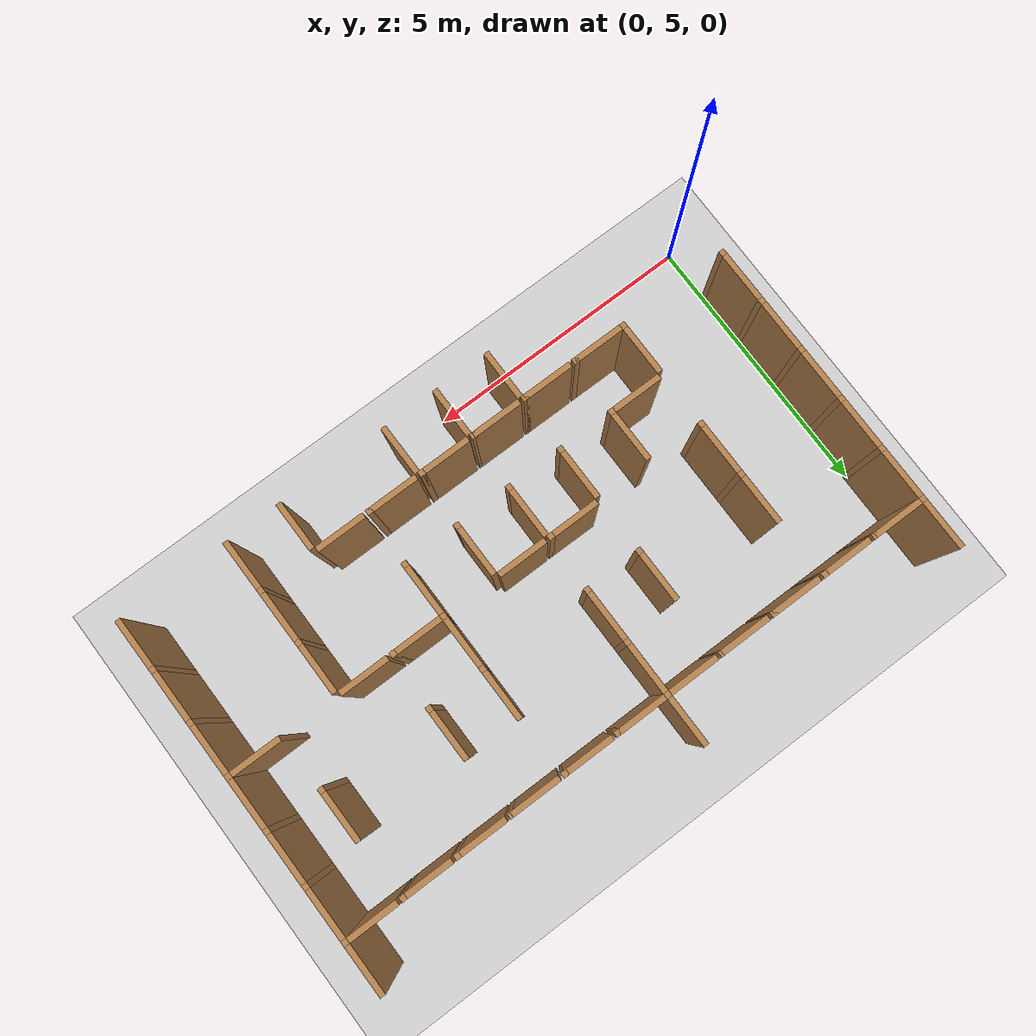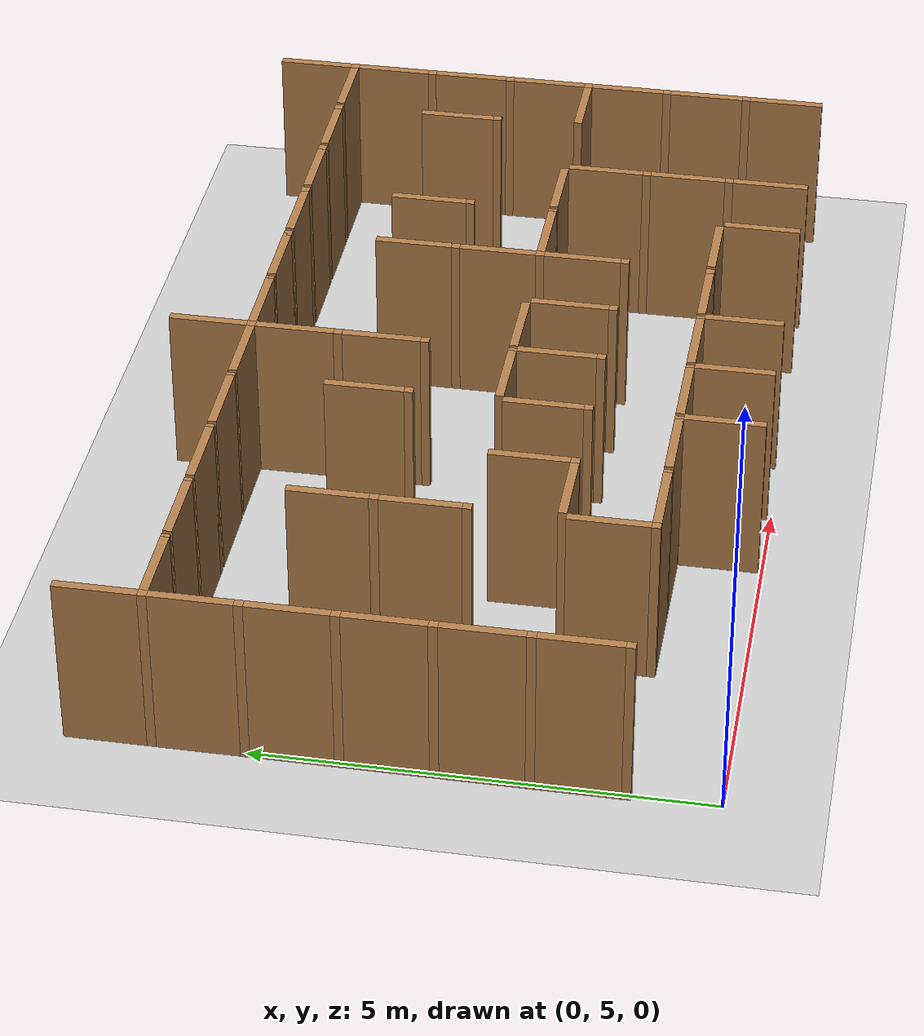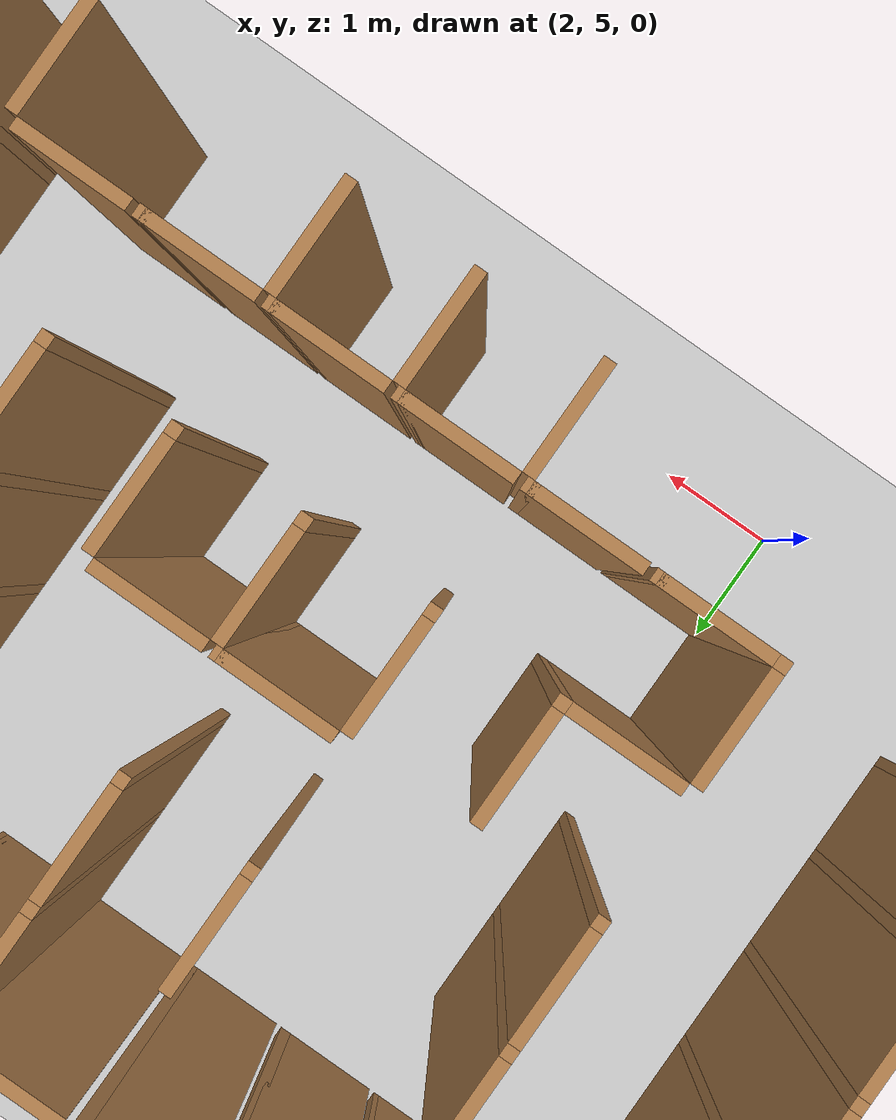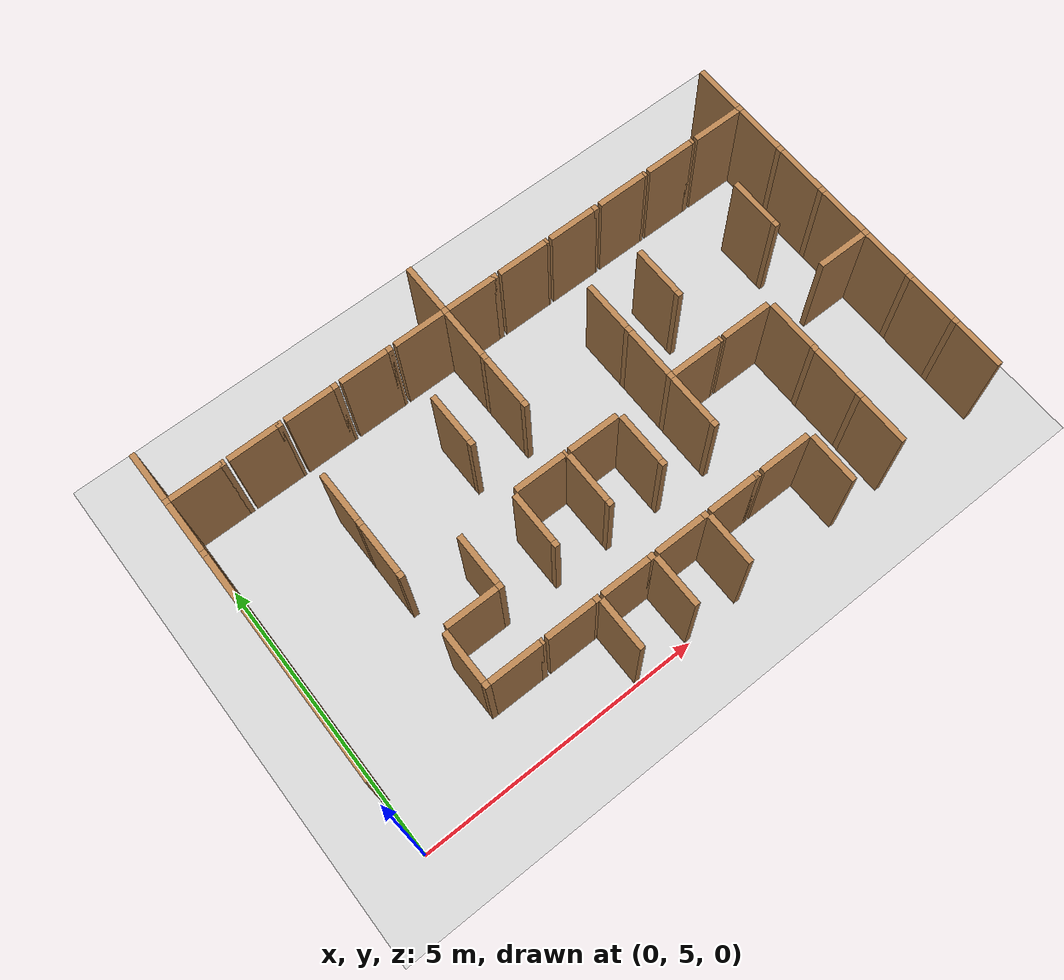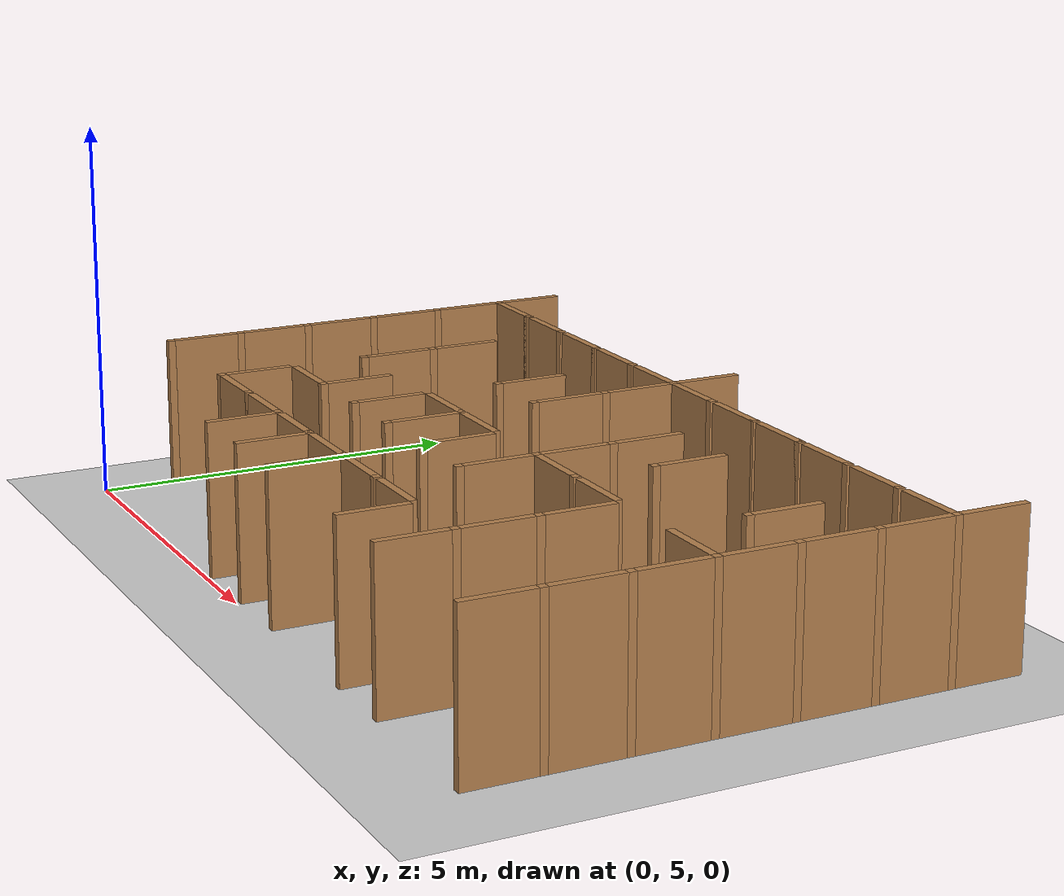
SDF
<sdf version="1.6">
 <world name="default">
  <include><uri>model://sun</uri></include>
  <model name="ground_plane">
   <static>true</static>
   <link name="link">
    <collision name="collision"><geometry><plane><size>12.0 12.0</size></plane></geometry></collision>
    <visual name="visual">
     <cast_shadows>false</cast_shadows>
     <geometry><plane><size>12.0 12.0</size></plane></geometry>
     <material>
      <script><uri>file://media/materials/scripts/gazebo.material</uri><name>Gazebo/Grey</name></script>
     </material>
    </visual>
   </link>
   <pose>6.0 6.0 0 0 0 0</pose>
  </model>
  <model name="vwall_5_4">
   <pose>4.0 5.5 1.0 0 0 0</pose>
   <link name="link">
    <collision name="collision"><geometry><box><size>0.1 0.9 2</size></box></geometry></collision>
    <visual name="visual">
     <geometry><box><size>0.1 0.9 2</size></box></geometry>
     <material>
      <script><uri>file://media/materials/scripts/gazebo.material</uri><name>Gazebo/Wood</name></script>
     </material>
    </visual>
   </link>
  </model>
  <model name="vwall_5_5">
   <pose>5.0 5.5 1.0 0 0 0</pose>
   <link name="link">
    <collision name="collision"><geometry><box><size>0.1 0.9 2</size></box></geometry></collision>
    <visual name="visual">
     <geometry><box><size>0.1 0.9 2</size></box></geometry>
     <material>
      <script><uri>file://media/materials/scripts/gazebo.material</uri><name>Gazebo/Wood</name></script>
     </material>
    </visual>
   </link>
  </model>
  <model name="vwall_5_6">
   <pose>6.0 5.5 1.0 0 0 0</pose>
   <link name="link">
    <collision name="collision"><geometry><box><size>0.1 0.9 2</size></box></geometry></collision>
    <visual name="visual">
     <geometry><box><size>0.1 0.9 2</size></box></geometry>
     <material>
      <script><uri>file://media/materials/scripts/gazebo.material</uri><name>Gazebo/Wood</name></script>
     </material>
    </visual>
   </link>
  </model>
  <model name="vwall_5_8">
   <pose>8.0 5.5 1.0 0 0 0</pose>
   <link name="link">
    <collision name="collision"><geometry><box><size>0.1 0.9 2</size></box></geometry></collision>
    <visual name="visual">
     <geometry><box><size>0.1 0.9 2</size></box></geometry>
     <material>
      <script><uri>file://media/materials/scripts/gazebo.material</uri><name>Gazebo/Wood</name></script>
     </material>
    </visual>
   </link>
  </model>
  <model name="vwall_5_9">
   <pose>9.0 5.5 1.0 0 0 0</pose>
   <link name="link">
    <collision name="collision"><geometry><box><size>0.1 0.9 2</size></box></geometry></collision>
    <visual name="visual">
     <geometry><box><size>0.1 0.9 2</size></box></geometry>
     <material>
      <script><uri>file://media/materials/scripts/gazebo.material</uri><name>Gazebo/Wood</name></script>
     </material>
    </visual>
   </link>
  </model>
  <model name="vwall_5_11">
   <pose>11.0 5.5 1.0 0 0 0</pose>
   <link name="link">
    <collision name="collision"><geometry><box><size>0.1 0.9 2</size></box></geometry></collision>
    <visual name="visual">
     <geometry><box><size>0.1 0.9 2</size></box></geometry>
     <material>
      <script><uri>file://media/materials/scripts/gazebo.material</uri><name>Gazebo/Wood</name></script>
     </material>
    </visual>
   </link>
  </model>
  <model name="vwall_6_0">
   <pose>0.0 6.5 1.0 0 0 0</pose>
   <link name="link">
    <collision name="collision"><geometry><box><size>0.1 0.9 2</size></box></geometry></collision>
    <visual name="visual">
     <geometry><box><size>0.1 0.9 2</size></box></geometry>
     <material>
      <script><uri>file://media/materials/scripts/gazebo.material</uri><name>Gazebo/Wood</name></script>
     </material>
    </visual>
   </link>
  </model>
  <model name="joint_0.0_6.0">
   <pose>0.0 6.0 1.0 0 0 0</pose>
   <link name="link">
    <collision name="collision"><geometry><box><size>0.1 0.1 2</size></box></geometry></collision>
    <visual name="visual">
     <geometry><box><size>0.1 0.1 2</size></box></geometry>
     <material>
      <script><uri>file://media/materials/scripts/gazebo.material</uri><name>Gazebo/Wood</name></script>
     </material>
    </visual>
   </link>
  </model>
  <model name="vwall_6_2">
   <pose>2.0 6.5 1.0 0 0 0</pose>
   <link name="link">
    <collision name="collision"><geometry><box><size>0.1 0.9 2</size></box></geometry></collision>
    <visual name="visual">
     <geometry><box><size>0.1 0.9 2</size></box></geometry>
     <material>
      <script><uri>file://media/materials/scripts/gazebo.material</uri><name>Gazebo/Wood</name></script>
     </material>
    </visual>
   </link>
  </model>
  <model name="joint_2.0_6.0">
   <pose>2.0 6.0 1.0 0 0 0</pose>
   <link name="link">
    <collision name="collision"><geometry><box><size>0.1 0.1 2</size></box></geometry></collision>
    <visual name="visual">
     <geometry><box><size>0.1 0.1 2</size></box></geometry>
     <material>
      <script><uri>file://media/materials/scripts/gazebo.material</uri><name>Gazebo/Wood</name></script>
     </material>
    </visual>
   </link>
  </model>
  <model name="vwall_6_9">
   <pose>9.0 6.5 1.0 0 0 0</pose>
   <link name="link">
    <collision name="collision"><geometry><box><size>0.1 0.9 2</size></box></geometry></collision>
    <visual name="visual">
     <geometry><box><size>0.1 0.9 2</size></box></geometry>
     <material>
      <script><uri>file://media/materials/scripts/gazebo.material</uri><name>Gazebo/Wood</name></script>
     </material>
    </visual>
   </link>
  </model>
  <model name="joint_9.0_6.0">
   <pose>9.0 6.0 1.0 0 0 0</pose>
   <link name="link">
    <collision name="collision"><geometry><box><size>0.1 0.1 2</size></box></geometry></collision>
    <visual name="visual">
     <geometry><box><size>0.1 0.1 2</size></box></geometry>
     <material>
      <script><uri>file://media/materials/scripts/gazebo.material</uri><name>Gazebo/Wood</name></script>
     </material>
    </visual>
   </link>
  </model>
  <model name="vwall_6_11">
   <pose>11.0 6.5 1.0 0 0 0</pose>
   <link name="link">
    <collision name="collision"><geometry><box><size>0.1 0.9 2</size></box></geometry></collision>
    <visual name="visual">
     <geometry><box><size>0.1 0.9 2</size></box></geometry>
     <material>
      <script><uri>file://media/materials/scripts/gazebo.material</uri><name>Gazebo/Wood</name></script>
     </material>
    </visual>
   </link>
  </model>
  <model name="joint_11.0_6.0">
   <pose>11.0 6.0 1.0 0 0 0</pose>
   <link name="link">
    <collision name="collision"><geometry><box><size>0.1 0.1 2</size></box></geometry></collision>
    <visual name="visual">
     <geometry><box><size>0.1 0.1 2</size></box></geometry>
     <material>
      <script><uri>file://media/materials/scripts/gazebo.material</uri><name>Gazebo/Wood</name></script>
     </material>
    </visual>
   </link>
  </model>
  <model name="vwall_7_0">
   <pose>0.0 7.5 1.0 0 0 0</pose>
   <link name="link">
    <collision name="collision"><geometry><box><size>0.1 0.9 2</size></box></geometry></collision>
    <visual name="visual">
     <geometry><box><size>0.1 0.9 2</size></box></geometry>
     <material>
      <script><uri>file://media/materials/scripts/gazebo.material</uri><name>Gazebo/Wood</name></script>
     </material>
    </visual>
   </link>
  </model>
  <model name="joint_0.0_7.0">
   <pose>0.0 7.0 1.0 0 0 0</pose>
   <link name="link">
    <collision name="collision"><geometry><box><size>0.1 0.1 2</size></box></geometry></collision>
    <visual name="visual">
     <geometry><box><size>0.1 0.1 2</size></box></geometry>
     <material>
      <script><uri>file://media/materials/scripts/gazebo.material</uri><name>Gazebo/Wood</name></script>
     </material>
    </visual>
   </link>
  </model>
  <model name="vwall_7_3">
   <pose>3.0 7.5 1.0 0 0 0</pose>
   <link name="link">
    <collision name="collision"><geometry><box><size>0.1 0.9 2</size></box></geometry></collision>
    <visual name="visual">
     <geometry><box><size>0.1 0.9 2</size></box></geometry>
     <material>
      <script><uri>file://media/materials/scripts/gazebo.material</uri><name>Gazebo/Wood</name></script>
     </material>
    </visual>
   </link>
  </model>
  <model name="joint_3.0_7.0">
   <pose>3.0 7.0 1.0 0 0 0</pose>
   <link name="link">
    <collision name="collision"><geometry><box><size>0.1 0.1 2</size></box></geometry></collision>
    <visual name="visual">
     <geometry><box><size>0.1 0.1 2</size></box></geometry>
     <material>
      <script><uri>file://media/materials/scripts/gazebo.material</uri><name>Gazebo/Wood</name></script>
     </material>
    </visual>
   </link>
  </model>
  <model name="vwall_7_4">
   <pose>4.0 7.5 1.0 0 0 0</pose>
   <link name="link">
    <collision name="collision"><geometry><box><size>0.1 0.9 2</size></box></geometry></collision>
    <visual name="visual">
     <geometry><box><size>0.1 0.9 2</size></box></geometry>
     <material>
      <script><uri>file://media/materials/scripts/gazebo.material</uri><name>Gazebo/Wood</name></script>
     </material>
    </visual>
   </link>
  </model>
  <model name="joint_4.0_7.0">
   <pose>4.0 7.0 1.0 0 0 0</pose>
   <link name="link">
    <collision name="collision"><geometry><box><size>0.1 0.1 2</size></box></geometry></collision>
    <visual name="visual">
     <geometry><box><size>0.1 0.1 2</size></box></geometry>
     <material>
      <script><uri>file://media/materials/scripts/gazebo.material</uri><name>Gazebo/Wood</name></script>
     </material>
    </visual>
   </link>
  </model>
  <model name="vwall_7_5">
   <pose>5.0 7.5 1.0 0 0 0</pose>
   <link name="link">
    <collision name="collision"><geometry><box><size>0.1 0.9 2</size></box></geometry></collision>
    <visual name="visual">
     <geometry><box><size>0.1 0.9 2</size></box></geometry>
     <material>
      <script><uri>file://media/materials/scripts/gazebo.material</uri><name>Gazebo/Wood</name></script>
     </material>
    </visual>
   </link>
  </model>
  <model name="joint_5.0_7.0">
   <pose>5.0 7.0 1.0 0 0 0</pose>
   <link name="link">
    <collision name="collision"><geometry><box><size>0.1 0.1 2</size></box></geometry></collision>
    <visual name="visual">
     <geometry><box><size>0.1 0.1 2</size></box></geometry>
     <material>
      <script><uri>file://media/materials/scripts/gazebo.material</uri><name>Gazebo/Wood</name></script>
     </material>
    </visual>
   </link>
  </model>
  <model name="vwall_7_6">
   <pose>6.0 7.5 1.0 0 0 0</pose>
   <link name="link">
    <collision name="collision"><geometry><box><size>0.1 0.9 2</size></box></geometry></collision>
    <visual name="visual">
     <geometry><box><size>0.1 0.9 2</size></box></geometry>
     <material>
      <script><uri>file://media/materials/scripts/gazebo.material</uri><name>Gazebo/Wood</name></script>
     </material>
    </visual>
   </link>
  </model>
  <model name="joint_6.0_7.0">
   <pose>6.0 7.0 1.0 0 0 0</pose>
   <link name="link">
    <collision name="collision"><geometry><box><size>0.1 0.1 2</size></box></geometry></collision>
    <visual name="visual">
     <geometry><box><size>0.1 0.1 2</size></box></geometry>
     <material>
      <script><uri>file://media/materials/scripts/gazebo.material</uri><name>Gazebo/Wood</name></script>
     </material>
    </visual>
   </link>
  </model>
  <model name="vwall_7_7">
   <pose>7.0 7.5 1.0 0 0 0</pose>
   <link name="link">
    <collision name="collision"><geometry><box><size>0.1 0.9 2</size></box></geometry></collision>
    <visual name="visual">
     <geometry><box><size>0.1 0.9 2</size></box></geometry>
     <material>
      <script><uri>file://media/materials/scripts/gazebo.material</uri><name>Gazebo/Wood</name></script>
     </material>
    </visual>
   </link>
  </model>
  <model name="joint_7.0_7.0">
   <pose>7.0 7.0 1.0 0 0 0</pose>
   <link name="link">
    <collision name="collision"><geometry><box><size>0.1 0.1 2</size></box></geometry></collision>
    <visual name="visual">
     <geometry><box><size>0.1 0.1 2</size></box></geometry>
     <material>
      <script><uri>file://media/materials/scripts/gazebo.material</uri><name>Gazebo/Wood</name></script>
     </material>
    </visual>
   </link>
  </model>
  <model name="vwall_7_9">
   <pose>9.0 7.5 1.0 0 0 0</pose>
   <link name="link">
    <collision name="collision"><geometry><box><size>0.1 0.9 2</size></box></geometry></collision>
    <visual name="visual">
     <geometry><box><size>0.1 0.9 2</size></box></geometry>
     <material>
      <script><uri>file://media/materials/scripts/gazebo.material</uri><name>Gazebo/Wood</name></script>
     </material>
    </visual>
   </link>
  </model>
  <model name="joint_9.0_7.0">
   <pose>9.0 7.0 1.0 0 0 0</pose>
   <link name="link">
    <collision name="collision"><geometry><box><size>0.1 0.1 2</size></box></geometry></collision>
    <visual name="visual">
     <geometry><box><size>0.1 0.1 2</size></box></geometry>
     <material>
      <script><uri>file://media/materials/scripts/gazebo.material</uri><name>Gazebo/Wood</name></script>
     </material>
    </visual>
   </link>
  </model>
  <model name="vwall_7_11">
   <pose>11.0 7.5 1.0 0 0 0</pose>
   <link name="link">
    <collision name="collision"><geometry><box><size>0.1 0.9 2</size></box></geometry></collision>
    <visual name="visual">
     <geometry><box><size>0.1 0.9 2</size></box></geometry>
     <material>
      <script><uri>file://media/materials/scripts/gazebo.material</uri><name>Gazebo/Wood</name></script>
     </material>
    </visual>
   </link>
  </model>
  <model name="joint_11.0_7.0">
   <pose>11.0 7.0 1.0 0 0 0</pose>
   <link name="link">
    <collision name="collision"><geometry><box><size>0.1 0.1 2</size></box></geometry></collision>
    <visual name="visual">
     <geometry><box><size>0.1 0.1 2</size></box></geometry>
     <material>
      <script><uri>file://media/materials/scripts/gazebo.material</uri><name>Gazebo/Wood</name></script>
     </material>
    </visual>
   </link>
  </model>
  <model name="vwall_8_0">
   <pose>0.0 8.5 1.0 0 0 0</pose>
   <link name="link">
    <collision name="collision"><geometry><box><size>0.1 0.9 2</size></box></geometry></collision>
    <visual name="visual">
     <geometry><box><size>0.1 0.9 2</size></box></geometry>
     <material>
      <script><uri>file://media/materials/scripts/gazebo.material</uri><name>Gazebo/Wood</name></script>
     </material>
    </visual>
   </link>
  </model>
  <model name="joint_0.0_8.0">
   <pose>0.0 8.0 1.0 0 0 0</pose>
   <link name="link">
    <collision name="collision"><geometry><box><size>0.1 0.1 2</size></box></geometry></collision>
    <visual name="visual">
     <geometry><box><size>0.1 0.1 2</size></box></geometry>
     <material>
      <script><uri>file://media/materials/scripts/gazebo.material</uri><name>Gazebo/Wood</name></script>
     </material>
    </visual>
   </link>
  </model>
  <model name="vwall_8_2">
   <pose>2.0 8.5 1.0 0 0 0</pose>
   <link name="link">
    <collision name="collision"><geometry><box><size>0.1 0.9 2</size></box></geometry></collision>
    <visual name="visual">
     <geometry><box><size>0.1 0.9 2</size></box></geometry>
     <material>
      <script><uri>file://media/materials/scripts/gazebo.material</uri><name>Gazebo/Wood</name></script>
     </material>
    </visual>
   </link>
  </model>
  <model name="joint_2.0_8.0">
   <pose>2.0 8.0 1.0 0 0 0</pose>
   <link name="link">
    <collision name="collision"><geometry><box><size>0.1 0.1 2</size></box></geometry></collision>
    <visual name="visual">
     <geometry><box><size>0.1 0.1 2</size></box></geometry>
     <material>
      <script><uri>file://media/materials/scripts/gazebo.material</uri><name>Gazebo/Wood</name></script>
     </material>
    </visual>
   </link>
  </model>
  <model name="vwall_8_7">
   <pose>7.0 8.5 1.0 0 0 0</pose>
   <link name="link">
    <collision name="collision"><geometry><box><size>0.1 0.9 2</size></box></geometry></collision>
    <visual name="visual">
     <geometry><box><size>0.1 0.9 2</size></box></geometry>
     <material>
      <script><uri>file://media/materials/scripts/gazebo.material</uri><name>Gazebo/Wood</name></script>
     </material>
    </visual>
   </link>
  </model>
  <model name="joint_7.0_8.0">
   <pose>7.0 8.0 1.0 0 0 0</pose>
   <link name="link">
    <collision name="collision"><geometry><box><size>0.1 0.1 2</size></box></geometry></collision>
    <visual name="visual">
     <geometry><box><size>0.1 0.1 2</size></box></geometry>
     <material>
      <script><uri>file://media/materials/scripts/gazebo.material</uri><name>Gazebo/Wood</name></script>
     </material>
    </visual>
   </link>
  </model>
  <model name="vwall_8_11">
   <pose>11.0 8.5 1.0 0 0 0</pose>
   <link name="link">
    <collision name="collision"><geometry><box><size>0.1 0.9 2</size></box></geometry></collision>
    <visual name="visual">
     <geometry><box><size>0.1 0.9 2</size></box></geometry>
     <material>
      <script><uri>file://media/materials/scripts/gazebo.material</uri><name>Gazebo/Wood</name></script>
     </material>
    </visual>
   </link>
  </model>
  <model name="joint_11.0_8.0">
   <pose>11.0 8.0 1.0 0 0 0</pose>
   <link name="link">
    <collision name="collision"><geometry><box><size>0.1 0.1 2</size></box></geometry></collision>
    <visual name="visual">
     <geometry><box><size>0.1 0.1 2</size></box></geometry>
     <material>
      <script><uri>file://media/materials/scripts/gazebo.material</uri><name>Gazebo/Wood</name></script>
     </material>
    </visual>
   </link>
  </model>
  <model name="vwall_9_0">
   <pose>0.0 9.5 1.0 0 0 0</pose>
   <link name="link">
    <collision name="collision"><geometry><box><size>0.1 0.9 2</size></box></geometry></collision>
    <visual name="visual">
     <geometry><box><size>0.1 0.9 2</size></box></geometry>
     <material>
      <script><uri>file://media/materials/scripts/gazebo.material</uri><name>Gazebo/Wood</name></script>
     </material>
    </visual>
   </link>
  </model>
  <model name="joint_0.0_9.0">
   <pose>0.0 9.0 1.0 0 0 0</pose>
   <link name="link">
    <collision name="collision"><geometry><box><size>0.1 0.1 2</size></box></geometry></collision>
    <visual name="visual">
     <geometry><box><size>0.1 0.1 2</size></box></geometry>
     <material>
      <script><uri>file://media/materials/scripts/gazebo.material</uri><name>Gazebo/Wood</name></script>
     </material>
    </visual>
   </link>
  </model>
  <model name="vwall_9_2">
   <pose>2.0 9.5 1.0 0 0 0</pose>
   <link name="link">
    <collision name="collision"><geometry><box><size>0.1 0.9 2</size></box></geometry></collision>
    <visual name="visual">
     <geometry><box><size>0.1 0.9 2</size></box></geometry>
     <material>
      <script><uri>file://media/materials/scripts/gazebo.material</uri><name>Gazebo/Wood</name></script>
     </material>
    </visual>
   </link>
  </model>
  <model name="joint_2.0_9.0">
   <pose>2.0 9.0 1.0 0 0 0</pose>
   <link name="link">
    <collision name="collision"><geometry><box><size>0.1 0.1 2</size></box></geometry></collision>
    <visual name="visual">
     <geometry><box><size>0.1 0.1 2</size></box></geometry>
     <material>
      <script><uri>file://media/materials/scripts/gazebo.material</uri><name>Gazebo/Wood</name></script>
     </material>
    </visual>
   </link>
  </model>
  <model name="vwall_9_4">
   <pose>4.0 9.5 1.0 0 0 0</pose>
   <link name="link">
    <collision name="collision"><geometry><box><size>0.1 0.9 2</size></box></geometry></collision>
    <visual name="visual">
     <geometry><box><size>0.1 0.9 2</size></box></geometry>
     <material>
      <script><uri>file://media/materials/scripts/gazebo.material</uri><name>Gazebo/Wood</name></script>
     </material>
    </visual>
   </link>
  </model>
  <model name="joint_4.0_9.0">
   <pose>4.0 9.0 1.0 0 0 0</pose>
   <link name="link">
    <collision name="collision"><geometry><box><size>0.1 0.1 2</size></box></geometry></collision>
    <visual name="visual">
     <geometry><box><size>0.1 0.1 2</size></box></geometry>
     <material>
      <script><uri>file://media/materials/scripts/gazebo.material</uri><name>Gazebo/Wood</name></script>
     </material>
    </visual>
   </link>
  </model>
  <model name="vwall_9_5">
   <pose>5.0 9.5 1.0 0 0 0</pose>
   <link name="link">
    <collision name="collision"><geometry><box><size>0.1 0.9 2</size></box></geometry></collision>
    <visual name="visual">
     <geometry><box><size>0.1 0.9 2</size></box></geometry>
     <material>
      <script><uri>file://media/materials/scripts/gazebo.material</uri><name>Gazebo/Wood</name></script>
     </material>
    </visual>
   </link>
  </model>
  <model name="joint_5.0_9.0">
   <pose>5.0 9.0 1.0 0 0 0</pose>
   <link name="link">
    <collision name="collision"><geometry><box><size>0.1 0.1 2</size></box></geometry></collision>
    <visual name="visual">
     <geometry><box><size>0.1 0.1 2</size></box></geometry>
     <material>
      <script><uri>file://media/materials/scripts/gazebo.material</uri><name>Gazebo/Wood</name></script>
     </material>
    </visual>
   </link>
  </model>
  <model name="vwall_9_7">
   <pose>7.0 9.5 1.0 0 0 0</pose>
   <link name="link">
    <collision name="collision"><geometry><box><size>0.1 0.9 2</size></box></geometry></collision>
    <visual name="visual">
     <geometry><box><size>0.1 0.9 2</size></box></geometry>
     <material>
      <script><uri>file://media/materials/scripts/gazebo.material</uri><name>Gazebo/Wood</name></script>
     </material>
    </visual>
   </link>
  </model>
  <model name="joint_7.0_9.0">
   <pose>7.0 9.0 1.0 0 0 0</pose>
   <link name="link">
    <collision name="collision"><geometry><box><size>0.1 0.1 2</size></box></geometry></collision>
    <visual name="visual">
     <geometry><box><size>0.1 0.1 2</size></box></geometry>
     <material>
      <script><uri>file://media/materials/scripts/gazebo.material</uri><name>Gazebo/Wood</name></script>
     </material>
    </visual>
   </link>
  </model>
  <model name="vwall_9_8">
   <pose>8.0 9.5 1.0 0 0 0</pose>
   <link name="link">
    <collision name="collision"><geometry><box><size>0.1 0.9 2</size></box></geometry></collision>
    <visual name="visual">
     <geometry><box><size>0.1 0.9 2</size></box></geometry>
     <material>
      <script><uri>file://media/materials/scripts/gazebo.material</uri><name>Gazebo/Wood</name></script>
     </material>
    </visual>
   </link>
  </model>
  <model name="joint_8.0_9.0">
   <pose>8.0 9.0 1.0 0 0 0</pose>
   <link name="link">
    <collision name="collision"><geometry><box><size>0.1 0.1 2</size></box></geometry></collision>
    <visual name="visual">
     <geometry><box><size>0.1 0.1 2</size></box></geometry>
     <material>
      <script><uri>file://media/materials/scripts/gazebo.material</uri><name>Gazebo/Wood</name></script>
     </material>
    </visual>
   </link>
  </model>
  <model name="vwall_9_10">
   <pose>10.0 9.5 1.0 0 0 0</pose>
   <link name="link">
    <collision name="collision"><geometry><box><size>0.1 0.9 2</size></box></geometry></collision>
    <visual name="visual">
     <geometry><box><size>0.1 0.9 2</size></box></geometry>
     <material>
      <script><uri>file://media/materials/scripts/gazebo.material</uri><name>Gazebo/Wood</name></script>
     </material>
    </visual>
   </link>
  </model>
  <model name="joint_10.0_9.0">
   <pose>10.0 9.0 1.0 0 0 0</pose>
   <link name="link">
    <collision name="collision"><geometry><box><size>0.1 0.1 2</size></box></geometry></collision>
    <visual name="visual">
     <geometry><box><size>0.1 0.1 2</size></box></geometry>
     <material>
      <script><uri>file://media/materials/scripts/gazebo.material</uri><name>Gazebo/Wood</name></script>
     </material>
    </visual>
   </link>
  </model>
  <model name="vwall_9_11">
   <pose>11.0 9.5 1.0 0 0 0</pose>
   <link name="link">
    <collision name="collision"><geometry><box><size>0.1 0.9 2</size></box></geometry></collision>
    <visual name="visual">
     <geometry><box><size>0.1 0.9 2</size></box></geometry>
     <material>
      <script><uri>file://media/materials/scripts/gazebo.material</uri><name>Gazebo/Wood</name></script>
     </material>
    </visual>
   </link>
  </model>
  <model name="joint_11.0_9.0">
   <pose>11.0 9.0 1.0 0 0 0</pose>
   <link name="link">
    <collision name="collision"><geometry><box><size>0.1 0.1 2</size></box></geometry></collision>
    <visual name="visual">
     <geometry><box><size>0.1 0.1 2</size></box></geometry>
     <material>
      <script><uri>file://media/materials/scripts/gazebo.material</uri><name>Gazebo/Wood</name></script>
     </material>
    </visual>
   </link>
  </model>
  <model name="vwall_10_0">
   <pose>0.0 10.5 1.0 0 0 0</pose>
   <link name="link">
    <collision name="collision"><geometry><box><size>0.1 0.9 2</size></box></geometry></collision>
    <visual name="visual">
     <geometry><box><size>0.1 0.9 2</size></box></geometry>
     <material>
      <script><uri>file://media/materials/scripts/gazebo.material</uri><name>Gazebo/Wood</name></script>
     </material>
    </visual>
   </link>
  </model>
  <model name="joint_0.0_10.0">
   <pose>0.0 10.0 1.0 0 0 0</pose>
   <link name="link">
    <collision name="collision"><geometry><box><size>0.1 0.1 2</size></box></geometry></collision>
    <visual name="visual">
     <geometry><box><size>0.1 0.1 2</size></box></geometry>
     <material>
      <script><uri>file://media/materials/scripts/gazebo.material</uri><name>Gazebo/Wood</name></script>
     </material>
    </visual>
   </link>
  </model>
  <model name="vwall_10_5">
   <pose>5.0 10.5 1.0 0 0 0</pose>
   <link name="link">
    <collision name="collision"><geometry><box><size>0.1 0.9 2</size></box></geometry></collision>
    <visual name="visual">
     <geometry><box><size>0.1 0.9 2</size></box></geometry>
     <material>
      <script><uri>file://media/materials/scripts/gazebo.material</uri><name>Gazebo/Wood</name></script>
     </material>
    </visual>
   </link>
  </model>
  <model name="joint_5.0_10.0">
   <pose>5.0 10.0 1.0 0 0 0</pose>
   <link name="link">
    <collision name="collision"><geometry><box><size>0.1 0.1 2</size></box></geometry></collision>
    <visual name="visual">
     <geometry><box><size>0.1 0.1 2</size></box></geometry>
     <material>
      <script><uri>file://media/materials/scripts/gazebo.material</uri><name>Gazebo/Wood</name></script>
     </material>
    </visual>
   </link>
  </model>
  <model name="vwall_10_11">
   <pose>11.0 10.5 1.0 0 0 0</pose>
   <link name="link">
    <collision name="collision"><geometry><box><size>0.1 0.9 2</size></box></geometry></collision>
    <visual name="visual">
     <geometry><box><size>0.1 0.9 2</size></box></geometry>
     <material>
      <script><uri>file://media/materials/scripts/gazebo.material</uri><name>Gazebo/Wood</name></script>
     </material>
    </visual>
   </link>
  </model>
  <model name="joint_11.0_10.0">
   <pose>11.0 10.0 1.0 0 0 0</pose>
   <link name="link">
    <collision name="collision"><geometry><box><size>0.1 0.1 2</size></box></geometry></collision>
    <visual name="visual">
     <geometry><box><size>0.1 0.1 2</size></box></geometry>
     <material>
      <script><uri>file://media/materials/scripts/gazebo.material</uri><name>Gazebo/Wood</name></script>
     </material>
    </visual>
   </link>
  </model>
  <model name="vwall_11_0">
   <pose>0.0 11.5 1.0 0 0 0</pose>
   <link name="link">
    <collision name="collision"><geometry><box><size>0.1 0.9 2</size></box></geometry></collision>
    <visual name="visual">
     <geometry><box><size>0.1 0.9 2</size></box></geometry>
     <material>
      <script><uri>file://media/materials/scripts/gazebo.material</uri><name>Gazebo/Wood</name></script>
     </material>
    </visual>
   </link>
  </model>
  <model name="joint_0.0_11.0">
   <pose>0.0 11.0 1.0 0 0 0</pose>
   <link name="link">
    <collision name="collision"><geometry><box><size>0.1 0.1 2</size></box></geometry></collision>
    <visual name="visual">
     <geometry><box><size>0.1 0.1 2</size></box></geometry>
     <material>
      <script><uri>file://media/materials/scripts/gazebo.material</uri><name>Gazebo/Wood</name></script>
     </material>
    </visual>
   </link>
  </model>
  <model name="vwall_11_5">
   <pose>5.0 11.5 1.0 0 0 0</pose>
   <link name="link">
    <collision name="collision"><geometry><box><size>0.1 0.9 2</size></box></geometry></collision>
    <visual name="visual">
     <geometry><box><size>0.1 0.9 2</size></box></geometry>
     <material>
      <script><uri>file://media/materials/scripts/gazebo.material</uri><name>Gazebo/Wood</name></script>
     </material>
    </visual>
   </link>
  </model>
  <model name="joint_5.0_11.0">
   <pose>5.0 11.0 1.0 0 0 0</pose>
   <link name="link">
    <collision name="collision"><geometry><box><size>0.1 0.1 2</size></box></geometry></collision>
    <visual name="visual">
     <geometry><box><size>0.1 0.1 2</size></box></geometry>
     <material>
      <script><uri>file://media/materials/scripts/gazebo.material</uri><name>Gazebo/Wood</name></script>
     </material>
    </visual>
   </link>
  </model>
  <model name="vwall_11_11">
   <pose>11.0 11.5 1.0 0 0 0</pose>
   <link name="link">
    <collision name="collision"><geometry><box><size>0.1 0.9 2</size></box></geometry></collision>
    <visual name="visual">
     <geometry><box><size>0.1 0.9 2</size></box></geometry>
     <material>
      <script><uri>file://media/materials/scripts/gazebo.material</uri><name>Gazebo/Wood</name></script>
     </material>
    </visual>
   </link>
  </model>
  <model name="joint_11.0_11.0">
   <pose>11.0 11.0 1.0 0 0 0</pose>
   <link name="link">
    <collision name="collision"><geometry><box><size>0.1 0.1 2</size></box></geometry></collision>
    <visual name="visual">
     <geometry><box><size>0.1 0.1 2</size></box></geometry>
     <material>
      <script><uri>file://media/materials/scripts/gazebo.material</uri><name>Gazebo/Wood</name></script>
     </material>
    </visual>
   </link>
  </model>
  <model name="hwall_6_2">
   <pose>2.5 6.0 1.0 0 0 0</pose>
   <link name="link">
    <collision name="collision"><geometry><box><size>0.9 0.1 2</size></box></geometry></collision>
    <visual name="visual">
     <geometry><box><size>0.9 0.1 2</size></box></geometry>
     <material>
      <script><uri>file://media/materials/scripts/gazebo.material</uri><name>Gazebo/Wood</name></script>
     </material>
    </visual>
   </link>
  </model>
  <model name="joint_2.95_6.0">
   <pose>2.95 6.0 1.0 0 0 0</pose>
   <link name="link">
    <collision name="collision"><geometry><box><size>0.1 0.1 2</size></box></geometry></collision>
    <visual name="visual">
     <geometry><box><size>0.1 0.1 2</size></box></geometry>
     <material>
      <script><uri>file://media/materials/scripts/gazebo.material</uri><name>Gazebo/Wood</name></script>
     </material>
    </visual>
   </link>
  </model>
  <model name="hwall_6_3">
   <pose>3.5 6.0 1.0 0 0 0</pose>
   <link name="link">
    <collision name="collision"><geometry><box><size>0.9 0.1 2</size></box></geometry></collision>
    <visual name="visual">
     <geometry><box><size>0.9 0.1 2</size></box></geometry>
     <material>
      <script><uri>file://media/materials/scripts/gazebo.material</uri><name>Gazebo/Wood</name></script>
     </material>
    </visual>
   </link>
  </model>
  <model name="joint_3.95_6.0">
   <pose>3.95 6.0 1.0 0 0 0</pose>
   <link name="link">
    <collision name="collision"><geometry><box><size>0.1 0.1 2</size></box></geometry></collision>
    <visual name="visual">
     <geometry><box><size>0.1 0.1 2</size></box></geometry>
     <material>
      <script><uri>file://media/materials/scripts/gazebo.material</uri><name>Gazebo/Wood</name></script>
     </material>
    </visual>
   </link>
  </model>
  <model name="hwall_6_4">
   <pose>4.5 6.0 1.0 0 0 0</pose>
   <link name="link">
    <collision name="collision"><geometry><box><size>0.9 0.1 2</size></box></geometry></collision>
    <visual name="visual">
     <geometry><box><size>0.9 0.1 2</size></box></geometry>
     <material>
      <script><uri>file://media/materials/scripts/gazebo.material</uri><name>Gazebo/Wood</name></script>
     </material>
    </visual>
   </link>
  </model>
  <model name="joint_4.95_6.0">
   <pose>4.95 6.0 1.0 0 0 0</pose>
   <link name="link">
    <collision name="collision"><geometry><box><size>0.1 0.1 2</size></box></geometry></collision>
    <visual name="visual">
     <geometry><box><size>0.1 0.1 2</size></box></geometry>
     <material>
      <script><uri>file://media/materials/scripts/gazebo.material</uri><name>Gazebo/Wood</name></script>
     </material>
    </visual>
   </link>
  </model>
  <model name="hwall_6_5">
   <pose>5.5 6.0 1.0 0 0 0</pose>
   <link name="link">
    <collision name="collision"><geometry><box><size>0.9 0.1 2</size></box></geometry></collision>
    <visual name="visual">
     <geometry><box><size>0.9 0.1 2</size></box></geometry>
     <material>
      <script><uri>file://media/materials/scripts/gazebo.material</uri><name>Gazebo/Wood</name></script>
     </material>
    </visual>
   </link>
  </model>
  <model name="joint_5.95_6.0">
   <pose>5.95 6.0 1.0 0 0 0</pose>
   <link name="link">
    <collision name="collision"><geometry><box><size>0.1 0.1 2</size></box></geometry></collision>
    <visual name="visual">
     <geometry><box><size>0.1 0.1 2</size></box></geometry>
     <material>
      <script><uri>file://media/materials/scripts/gazebo.material</uri><name>Gazebo/Wood</name></script>
     </material>
    </visual>
   </link>
  </model>
  <model name="hwall_6_6">
   <pose>6.5 6.0 1.0 0 0 0</pose>
   <link name="link">
    <collision name="collision"><geometry><box><size>0.9 0.1 2</size></box></geometry></collision>
    <visual name="visual">
     <geometry><box><size>0.9 0.1 2</size></box></geometry>
     <material>
      <script><uri>file://media/materials/scripts/gazebo.material</uri><name>Gazebo/Wood</name></script>
     </material>
    </visual>
   </link>
  </model>
  <model name="joint_6.95_6.0">
   <pose>6.95 6.0 1.0 0 0 0</pose>
   <link name="link">
    <collision name="collision"><geometry><box><size>0.1 0.1 2</size></box></geometry></collision>
    <visual name="visual">
     <geometry><box><size>0.1 0.1 2</size></box></geometry>
     <material>
      <script><uri>file://media/materials/scripts/gazebo.material</uri><name>Gazebo/Wood</name></script>
     </material>
    </visual>
   </link>
  </model>
  <model name="hwall_6_7">
   <pose>7.5 6.0 1.0 0 0 0</pose>
   <link name="link">
    <collision name="collision"><geometry><box><size>0.9 0.1 2</size></box></geometry></collision>
    <visual name="visual">
     <geometry><box><size>0.9 0.1 2</size></box></geometry>
     <material>
      <script><uri>file://media/materials/scripts/gazebo.material</uri><name>Gazebo/Wood</name></script>
     </material>
    </visual>
   </link>
  </model>
  <model name="hwall_7_2">
   <pose>2.5 7.0 1.0 0 0 0</pose>
   <link name="link">
    <collision name="collision"><geometry><box><size>0.9 0.1 2</size></box></geometry></collision>
    <visual name="visual">
     <geometry><box><size>0.9 0.1 2</size></box></geometry>
     <material>
      <script><uri>file://media/materials/scripts/gazebo.material</uri><name>Gazebo/Wood</name></script>
     </material>
    </visual>
   </link>
  </model>
  <model name="hwall_8_4">
   <pose>4.5 8.0 1.0 0 0 0</pose>
   <link name="link">
    <collision name="collision"><geometry><box><size>0.9 0.1 2</size></box></geometry></collision>
    <visual name="visual">
     <geometry><box><size>0.9 0.1 2</size></box></geometry>
     <material>
      <script><uri>file://media/materials/scripts/gazebo.material</uri><name>Gazebo/Wood</name></script>
     </material>
    </visual>
   </link>
  </model>
  <model name="joint_4.95_8.0">
   <pose>4.95 8.0 1.0 0 0 0</pose>
   <link name="link">
    <collision name="collision"><geometry><box><size>0.1 0.1 2</size></box></geometry></collision>
    <visual name="visual">
     <geometry><box><size>0.1 0.1 2</size></box></geometry>
     <material>
      <script><uri>file://media/materials/scripts/gazebo.material</uri><name>Gazebo/Wood</name></script>
     </material>
    </visual>
   </link>
  </model>
  <model name="hwall_8_5">
   <pose>5.5 8.0 1.0 0 0 0</pose>
   <link name="link">
    <collision name="collision"><geometry><box><size>0.9 0.1 2</size></box></geometry></collision>
    <visual name="visual">
     <geometry><box><size>0.9 0.1 2</size></box></geometry>
     <material>
      <script><uri>file://media/materials/scripts/gazebo.material</uri><name>Gazebo/Wood</name></script>
     </material>
    </visual>
   </link>
  </model>
  <model name="hwall_8_7">
   <pose>7.5 8.0 1.0 0 0 0</pose>
   <link name="link">
    <collision name="collision"><geometry><box><size>0.9 0.1 2</size></box></geometry></collision>
    <visual name="visual">
     <geometry><box><size>0.9 0.1 2</size></box></geometry>
     <material>
      <script><uri>file://media/materials/scripts/gazebo.material</uri><name>Gazebo/Wood</name></script>
     </material>
    </visual>
   </link>
  </model>
  <model name="joint_7.95_8.0">
   <pose>7.95 8.0 1.0 0 0 0</pose>
   <link name="link">
    <collision name="collision"><geometry><box><size>0.1 0.1 2</size></box></geometry></collision>
    <visual name="visual">
     <geometry><box><size>0.1 0.1 2</size></box></geometry>
     <material>
      <script><uri>file://media/materials/scripts/gazebo.material</uri><name>Gazebo/Wood</name></script>
     </material>
    </visual>
   </link>
  </model>
  <model name="hwall_8_8">
   <pose>8.5 8.0 1.0 0 0 0</pose>
   <link name="link">
    <collision name="collision"><geometry><box><size>0.9 0.1 2</size></box></geometry></collision>
    <visual name="visual">
     <geometry><box><size>0.9 0.1 2</size></box></geometry>
     <material>
      <script><uri>file://media/materials/scripts/gazebo.material</uri><name>Gazebo/Wood</name></script>
     </material>
    </visual>
   </link>
  </model>
  <model name="hwall_8_10">
   <pose>10.5 8.0 1.0 0 0 0</pose>
   <link name="link">
    <collision name="collision"><geometry><box><size>0.9 0.1 2</size></box></geometry></collision>
    <visual name="visual">
     <geometry><box><size>0.9 0.1 2</size></box></geometry>
     <material>
      <script><uri>file://media/materials/scripts/gazebo.material</uri><name>Gazebo/Wood</name></script>
     </material>
    </visual>
   </link>
  </model>
  <model name="hwall_11_0">
   <pose>0.5 11.0 1.0 0 0 0</pose>
   <link name="link">
    <collision name="collision"><geometry><box><size>0.9 0.1 2</size></box></geometry></collision>
    <visual name="visual">
     <geometry><box><size>0.9 0.1 2</size></box></geometry>
     <material>
      <script><uri>file://media/materials/scripts/gazebo.material</uri><name>Gazebo/Wood</name></script>
     </material>
    </visual>
   </link>
  </model>
  <model name="joint_0.95_11.0">
   <pose>0.95 11.0 1.0 0 0 0</pose>
   <link name="link">
    <collision name="collision"><geometry><box><size>0.1 0.1 2</size></box></geometry></collision>
    <visual name="visual">
     <geometry><box><size>0.1 0.1 2</size></box></geometry>
     <material>
      <script><uri>file://media/materials/scripts/gazebo.material</uri><name>Gazebo/Wood</name></script>
     </material>
    </visual>
   </link>
  </model>
  <model name="hwall_11_1">
   <pose>1.5 11.0 1.0 0 0 0</pose>
   <link name="link">
    <collision name="collision"><geometry><box><size>0.9 0.1 2</size></box></geometry></collision>
    <visual name="visual">
     <geometry><box><size>0.9 0.1 2</size></box></geometry>
     <material>
      <script><uri>file://media/materials/scripts/gazebo.material</uri><name>Gazebo/Wood</name></script>
     </material>
    </visual>
   </link>
  </model>
  <model name="joint_1.95_11.0">
   <pose>1.95 11.0 1.0 0 0 0</pose>
   <link name="link">
    <collision name="collision"><geometry><box><size>0.1 0.1 2</size></box></geometry></collision>
    <visual name="visual">
     <geometry><box><size>0.1 0.1 2</size></box></geometry>
     <material>
      <script><uri>file://media/materials/scripts/gazebo.material</uri><name>Gazebo/Wood</name></script>
     </material>
    </visual>
   </link>
  </model>
  <model name="hwall_11_2">
   <pose>2.5 11.0 1.0 0 0 0</pose>
   <link name="link">
    <collision name="collision"><geometry><box><size>0.9 0.1 2</size></box></geometry></collision>
    <visual name="visual">
     <geometry><box><size>0.9 0.1 2</size></box></geometry>
     <material>
      <script><uri>file://media/materials/scripts/gazebo.material</uri><name>Gazebo/Wood</name></script>
     </material>
    </visual>
   </link>
  </model>
  <model name="joint_2.95_11.0">
   <pose>2.95 11.0 1.0 0 0 0</pose>
   <link name="link">
    <collision name="collision"><geometry><box><size>0.1 0.1 2</size></box></geometry></collision>
    <visual name="visual">
     <geometry><box><size>0.1 0.1 2</size></box></geometry>
     <material>
      <script><uri>file://media/materials/scripts/gazebo.material</uri><name>Gazebo/Wood</name></script>
     </material>
    </visual>
   </link>
  </model>
  <model name="hwall_11_3">
   <pose>3.5 11.0 1.0 0 0 0</pose>
   <link name="link">
    <collision name="collision"><geometry><box><size>0.9 0.1 2</size></box></geometry></collision>
    <visual name="visual">
     <geometry><box><size>0.9 0.1 2</size></box></geometry>
     <material>
      <script><uri>file://media/materials/scripts/gazebo.material</uri><name>Gazebo/Wood</name></script>
     </material>
    </visual>
   </link>
  </model>
  <model name="joint_3.95_11.0">
   <pose>3.95 11.0 1.0 0 0 0</pose>
   <link name="link">
    <collision name="collision"><geometry><box><size>0.1 0.1 2</size></box></geometry></collision>
    <visual name="visual">
     <geometry><box><size>0.1 0.1 2</size></box></geometry>
     <material>
      <script><uri>file://media/materials/scripts/gazebo.material</uri><name>Gazebo/Wood</name></script>
     </material>
    </visual>
   </link>
  </model>
  <model name="hwall_11_4">
   <pose>4.5 11.0 1.0 0 0 0</pose>
   <link name="link">
    <collision name="collision"><geometry><box><size>0.9 0.1 2</size></box></geometry></collision>
    <visual name="visual">
     <geometry><box><size>0.9 0.1 2</size></box></geometry>
     <material>
      <script><uri>file://media/materials/scripts/gazebo.material</uri><name>Gazebo/Wood</name></script>
     </material>
    </visual>
   </link>
  </model>
  <model name="hwall_11_5">
   <pose>5.5 11.0 1.0 0 0 0</pose>
   <link name="link">
    <collision name="collision"><geometry><box><size>0.9 0.1 2</size></box></geometry></collision>
    <visual name="visual">
     <geometry><box><size>0.9 0.1 2</size></box></geometry>
     <material>
      <script><uri>file://media/materials/scripts/gazebo.material</uri><name>Gazebo/Wood</name></script>
     </material>
    </visual>
   </link>
  </model>
  <model name="joint_5.95_11.0">
   <pose>5.95 11.0 1.0 0 0 0</pose>
   <link name="link">
    <collision name="collision"><geometry><box><size>0.1 0.1 2</size></box></geometry></collision>
    <visual name="visual">
     <geometry><box><size>0.1 0.1 2</size></box></geometry>
     <material>
      <script><uri>file://media/materials/scripts/gazebo.material</uri><name>Gazebo/Wood</name></script>
     </material>
    </visual>
   </link>
  </model>
  <model name="hwall_11_6">
   <pose>6.5 11.0 1.0 0 0 0</pose>
   <link name="link">
    <collision name="collision"><geometry><box><size>0.9 0.1 2</size></box></geometry></collision>
    <visual name="visual">
     <geometry><box><size>0.9 0.1 2</size></box></geometry>
     <material>
      <script><uri>file://media/materials/scripts/gazebo.material</uri><name>Gazebo/Wood</name></script>
     </material>
    </visual>
   </link>
  </model>
  <model name="joint_6.95_11.0">
   <pose>6.95 11.0 1.0 0 0 0</pose>
   <link name="link">
    <collision name="collision"><geometry><box><size>0.1 0.1 2</size></box></geometry></collision>
    <visual name="visual">
     <geometry><box><size>0.1 0.1 2</size></box></geometry>
     <material>
      <script><uri>file://media/materials/scripts/gazebo.material</uri><name>Gazebo/Wood</name></script>
     </material>
    </visual>
   </link>
  </model>
  <model name="hwall_11_7">
   <pose>7.5 11.0 1.0 0 0 0</pose>
   <link name="link">
    <collision name="collision"><geometry><box><size>0.9 0.1 2</size></box></geometry></collision>
    <visual name="visual">
     <geometry><box><size>0.9 0.1 2</size></box></geometry>
     <material>
      <script><uri>file://media/materials/scripts/gazebo.material</uri><name>Gazebo/Wood</name></script>
     </material>
    </visual>
   </link>
  </model>
  <model name="joint_7.95_11.0">
   <pose>7.95 11.0 1.0 0 0 0</pose>
   <link name="link">
    <collision name="collision"><geometry><box><size>0.1 0.1 2</size></box></geometry></collision>
    <visual name="visual">
     <geometry><box><size>0.1 0.1 2</size></box></geometry>
     <material>
      <script><uri>file://media/materials/scripts/gazebo.material</uri><name>Gazebo/Wood</name></script>
     </material>
    </visual>
   </link>
  </model>
  <model name="hwall_11_8">
   <pose>8.5 11.0 1.0 0 0 0</pose>
   <link name="link">
    <collision name="collision"><geometry><box><size>0.9 0.1 2</size></box></geometry></collision>
    <visual name="visual">
     <geometry><box><size>0.9 0.1 2</size></box></geometry>
     <material>
      <script><uri>file://media/materials/scripts/gazebo.material</uri><name>Gazebo/Wood</name></script>
     </material>
    </visual>
   </link>
  </model>
  <model name="joint_8.95_11.0">
   <pose>8.95 11.0 1.0 0 0 0</pose>
   <link name="link">
    <collision name="collision"><geometry><box><size>0.1 0.1 2</size></box></geometry></collision>
    <visual name="visual">
     <geometry><box><size>0.1 0.1 2</size></box></geometry>
     <material>
      <script><uri>file://media/materials/scripts/gazebo.material</uri><name>Gazebo/Wood</name></script>
     </material>
    </visual>
   </link>
  </model>
  <model name="hwall_11_9">
   <pose>9.5 11.0 1.0 0 0 0</pose>
   <link name="link">
    <collision name="collision"><geometry><box><size>0.9 0.1 2</size></box></geometry></collision>
    <visual name="visual">
     <geometry><box><size>0.9 0.1 2</size></box></geometry>
     <material>
      <script><uri>file://media/materials/scripts/gazebo.material</uri><name>Gazebo/Wood</name></script>
     </material>
    </visual>
   </link>
  </model>
  <model name="joint_9.95_11.0">
   <pose>9.95 11.0 1.0 0 0 0</pose>
   <link name="link">
    <collision name="collision"><geometry><box><size>0.1 0.1 2</size></box></geometry></collision>
    <visual name="visual">
     <geometry><box><size>0.1 0.1 2</size></box></geometry>
     <material>
      <script><uri>file://media/materials/scripts/gazebo.material</uri><name>Gazebo/Wood</name></script>
     </material>
    </visual>
   </link>
  </model>
  <model name="hwall_11_10">
   <pose>10.5 11.0 1.0 0 0 0</pose>
   <link name="link">
    <collision name="collision"><geometry><box><size>0.9 0.1 2</size></box></geometry></collision>
    <visual name="visual">
     <geometry><box><size>0.9 0.1 2</size></box></geometry>
     <material>
      <script><uri>file://media/materials/scripts/gazebo.material</uri><name>Gazebo/Wood</name></script>
     </material>
    </visual>
   </link>
  </model>
 </world>
</sdf>
